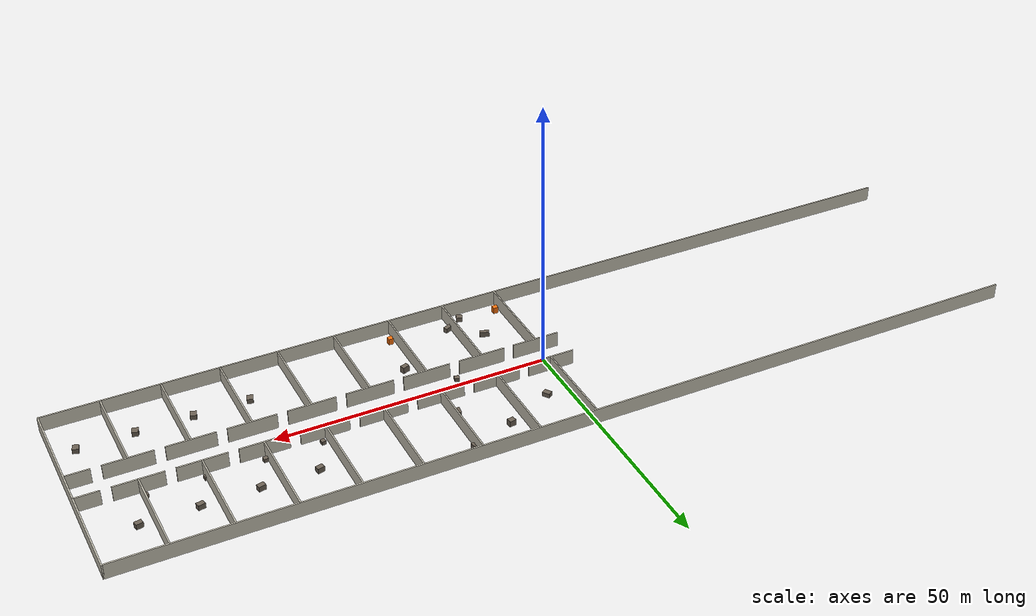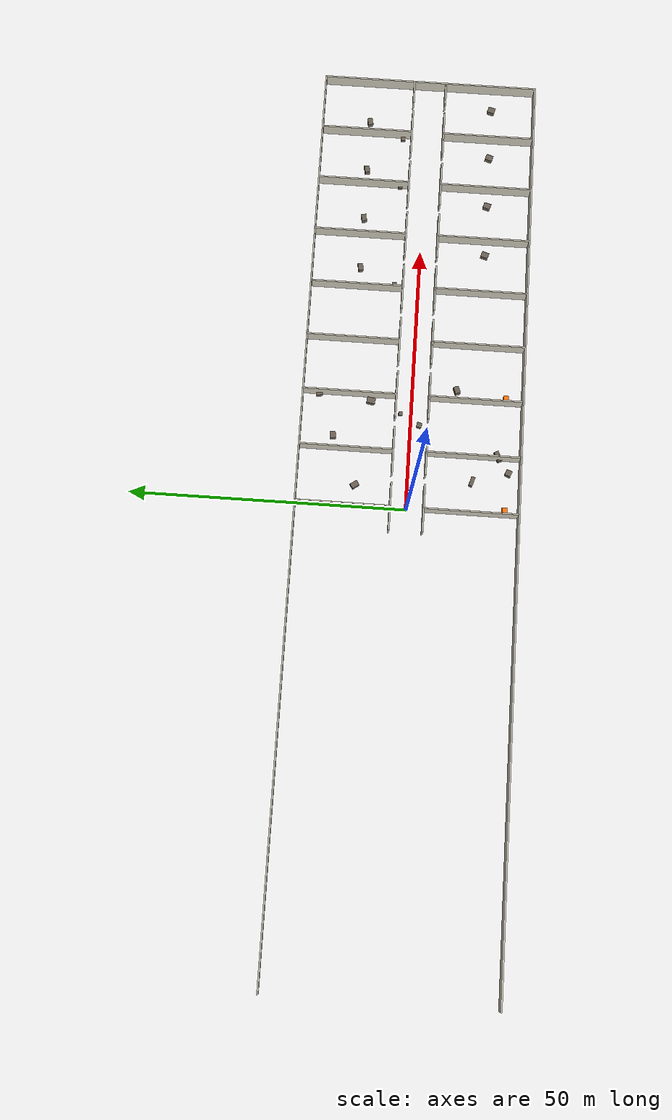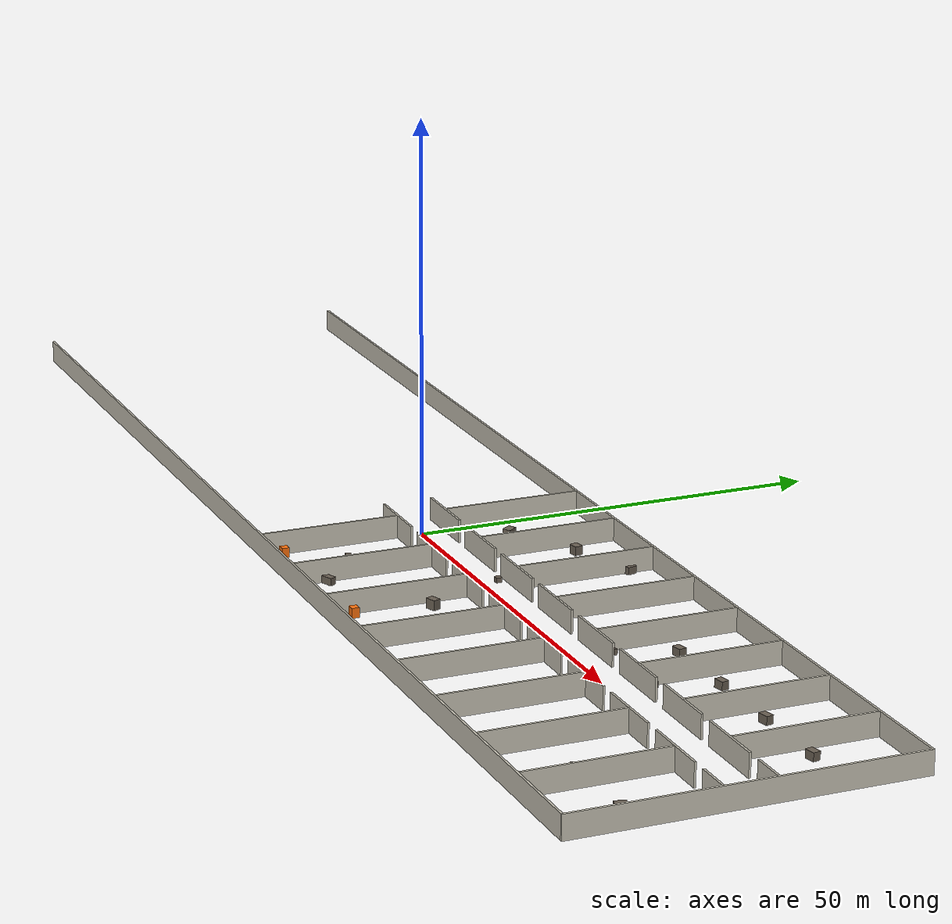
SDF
<sdf version="1.7">
 <world name="rescue_building_xxl">
  <model name="outer_wall_north">
   <static>true</static>
   <pose>0 20.0 1.4 0 0 0.0</pose>
   <link name="link">
    <collision name="col"><geometry><box><size>168.0 0.25 2.8</size></box></geometry></collision>
    <visual name="vis">
     <geometry><box><size>168.0 0.25 2.8</size></box></geometry>
     <material><ambient>0.8 0.78 0.72 1</ambient><diffuse>0.8 0.78 0.72 1</diffuse></material>
    </visual>
   </link>
  </model>
  <model name="outer_wall_south">
   <static>true</static>
   <pose>0 -20.0 1.4 0 0 0.0</pose>
   <link name="link">
    <collision name="col"><geometry><box><size>168.0 0.25 2.8</size></box></geometry></collision>
    <visual name="vis">
     <geometry><box><size>168.0 0.25 2.8</size></box></geometry>
     <material><ambient>0.8 0.78 0.72 1</ambient><diffuse>0.8 0.78 0.72 1</diffuse></material>
    </visual>
   </link>
  </model>
  <model name="outer_wall_east">
   <static>true</static>
   <pose>84.0 0 1.4 0 0 0.0</pose>
   <link name="link">
    <collision name="col"><geometry><box><size>0.25 40.25 2.8</size></box></geometry></collision>
    <visual name="vis">
     <geometry><box><size>0.25 40.25 2.8</size></box></geometry>
     <material><ambient>0.8 0.78 0.72 1</ambient><diffuse>0.8 0.78 0.72 1</diffuse></material>
    </visual>
   </link>
  </model>
  <model name="corridor_wall_north_16">
   <static>true</static>
   <pose>0.0 3.0 1.4 0 0 0.0</pose>
   <link name="link">
    <collision name="col"><geometry><box><size>8.7 0.25 2.8</size></box></geometry></collision>
    <visual name="vis">
     <geometry><box><size>8.7 0.25 2.8</size></box></geometry>
     <material><ambient>0.8 0.78 0.72 1</ambient><diffuse>0.8 0.78 0.72 1</diffuse></material>
    </visual>
   </link>
  </model>
  <model name="corridor_wall_north_18">
   <static>true</static>
   <pose>10.5 3.0 1.4 0 0 0.0</pose>
   <link name="link">
    <collision name="col"><geometry><box><size>8.7 0.25 2.8</size></box></geometry></collision>
    <visual name="vis">
     <geometry><box><size>8.7 0.25 2.8</size></box></geometry>
     <material><ambient>0.8 0.78 0.72 1</ambient><diffuse>0.8 0.78 0.72 1</diffuse></material>
    </visual>
   </link>
  </model>
  <model name="corridor_wall_north_20">
   <static>true</static>
   <pose>21.0 3.0 1.4 0 0 0.0</pose>
   <link name="link">
    <collision name="col"><geometry><box><size>8.700000000000003 0.25 2.8</size></box></geometry></collision>
    <visual name="vis">
     <geometry><box><size>8.700000000000003 0.25 2.8</size></box></geometry>
     <material><ambient>0.8 0.78 0.72 1</ambient><diffuse>0.8 0.78 0.72 1</diffuse></material>
    </visual>
   </link>
  </model>
  <model name="corridor_wall_north_22">
   <static>true</static>
   <pose>31.5 3.0 1.4 0 0 0.0</pose>
   <link name="link">
    <collision name="col"><geometry><box><size>8.700000000000003 0.25 2.8</size></box></geometry></collision>
    <visual name="vis">
     <geometry><box><size>8.700000000000003 0.25 2.8</size></box></geometry>
     <material><ambient>0.8 0.78 0.72 1</ambient><diffuse>0.8 0.78 0.72 1</diffuse></material>
    </visual>
   </link>
  </model>
  <model name="corridor_wall_north_24">
   <static>true</static>
   <pose>42.0 3.0 1.4 0 0 0.0</pose>
   <link name="link">
    <collision name="col"><geometry><box><size>8.700000000000003 0.25 2.8</size></box></geometry></collision>
    <visual name="vis">
     <geometry><box><size>8.700000000000003 0.25 2.8</size></box></geometry>
     <material><ambient>0.8 0.78 0.72 1</ambient><diffuse>0.8 0.78 0.72 1</diffuse></material>
    </visual>
   </link>
  </model>
  <model name="corridor_wall_north_26">
   <static>true</static>
   <pose>52.5 3.0 1.4 0 0 0.0</pose>
   <link name="link">
    <collision name="col"><geometry><box><size>8.700000000000003 0.25 2.8</size></box></geometry></collision>
    <visual name="vis">
     <geometry><box><size>8.700000000000003 0.25 2.8</size></box></geometry>
     <material><ambient>0.8 0.78 0.72 1</ambient><diffuse>0.8 0.78 0.72 1</diffuse></material>
    </visual>
   </link>
  </model>
  <model name="corridor_wall_north_28">
   <static>true</static>
   <pose>63.0 3.0 1.4 0 0 0.0</pose>
   <link name="link">
    <collision name="col"><geometry><box><size>8.699999999999996 0.25 2.8</size></box></geometry></collision>
    <visual name="vis">
     <geometry><box><size>8.699999999999996 0.25 2.8</size></box></geometry>
     <material><ambient>0.8 0.78 0.72 1</ambient><diffuse>0.8 0.78 0.72 1</diffuse></material>
    </visual>
   </link>
  </model>
  <model name="corridor_wall_north_30">
   <static>true</static>
   <pose>73.5 3.0 1.4 0 0 0.0</pose>
   <link name="link">
    <collision name="col"><geometry><box><size>8.699999999999989 0.25 2.8</size></box></geometry></collision>
    <visual name="vis">
     <geometry><box><size>8.699999999999989 0.25 2.8</size></box></geometry>
     <material><ambient>0.8 0.78 0.72 1</ambient><diffuse>0.8 0.78 0.72 1</diffuse></material>
    </visual>
   </link>
  </model>
  <model name="corridor_wall_north_32">
   <static>true</static>
   <pose>81.825 3.0 1.4 0 0 0.0</pose>
   <link name="link">
    <collision name="col"><geometry><box><size>4.349999999999994 0.25 2.8</size></box></geometry></collision>
    <visual name="vis">
     <geometry><box><size>4.349999999999994 0.25 2.8</size></box></geometry>
     <material><ambient>0.8 0.78 0.72 1</ambient><diffuse>0.8 0.78 0.72 1</diffuse></material>
    </visual>
   </link>
  </model>
  <model name="corridor_wall_south_16">
   <static>true</static>
   <pose>0.0 -3.0 1.4 0 0 0.0</pose>
   <link name="link">
    <collision name="col"><geometry><box><size>8.7 0.25 2.8</size></box></geometry></collision>
    <visual name="vis">
     <geometry><box><size>8.7 0.25 2.8</size></box></geometry>
     <material><ambient>0.8 0.78 0.72 1</ambient><diffuse>0.8 0.78 0.72 1</diffuse></material>
    </visual>
   </link>
  </model>
  <model name="corridor_wall_south_18">
   <static>true</static>
   <pose>10.5 -3.0 1.4 0 0 0.0</pose>
   <link name="link">
    <collision name="col"><geometry><box><size>8.7 0.25 2.8</size></box></geometry></collision>
    <visual name="vis">
     <geometry><box><size>8.7 0.25 2.8</size></box></geometry>
     <material><ambient>0.8 0.78 0.72 1</ambient><diffuse>0.8 0.78 0.72 1</diffuse></material>
    </visual>
   </link>
  </model>
  <model name="corridor_wall_south_20">
   <static>true</static>
   <pose>21.0 -3.0 1.4 0 0 0.0</pose>
   <link name="link">
    <collision name="col"><geometry><box><size>8.700000000000003 0.25 2.8</size></box></geometry></collision>
    <visual name="vis">
     <geometry><box><size>8.700000000000003 0.25 2.8</size></box></geometry>
     <material><ambient>0.8 0.78 0.72 1</ambient><diffuse>0.8 0.78 0.72 1</diffuse></material>
    </visual>
   </link>
  </model>
  <model name="corridor_wall_south_22">
   <static>true</static>
   <pose>31.5 -3.0 1.4 0 0 0.0</pose>
   <link name="link">
    <collision name="col"><geometry><box><size>8.700000000000003 0.25 2.8</size></box></geometry></collision>
    <visual name="vis">
     <geometry><box><size>8.700000000000003 0.25 2.8</size></box></geometry>
     <material><ambient>0.8 0.78 0.72 1</ambient><diffuse>0.8 0.78 0.72 1</diffuse></material>
    </visual>
   </link>
  </model>
  <model name="corridor_wall_south_24">
   <static>true</static>
   <pose>42.0 -3.0 1.4 0 0 0.0</pose>
   <link name="link">
    <collision name="col"><geometry><box><size>8.700000000000003 0.25 2.8</size></box></geometry></collision>
    <visual name="vis">
     <geometry><box><size>8.700000000000003 0.25 2.8</size></box></geometry>
     <material><ambient>0.8 0.78 0.72 1</ambient><diffuse>0.8 0.78 0.72 1</diffuse></material>
    </visual>
   </link>
  </model>
  <model name="corridor_wall_south_26">
   <static>true</static>
   <pose>52.5 -3.0 1.4 0 0 0.0</pose>
   <link name="link">
    <collision name="col"><geometry><box><size>8.700000000000003 0.25 2.8</size></box></geometry></collision>
    <visual name="vis">
     <geometry><box><size>8.700000000000003 0.25 2.8</size></box></geometry>
     <material><ambient>0.8 0.78 0.72 1</ambient><diffuse>0.8 0.78 0.72 1</diffuse></material>
    </visual>
   </link>
  </model>
  <model name="corridor_wall_south_28">
   <static>true</static>
   <pose>63.0 -3.0 1.4 0 0 0.0</pose>
   <link name="link">
    <collision name="col"><geometry><box><size>8.699999999999996 0.25 2.8</size></box></geometry></collision>
    <visual name="vis">
     <geometry><box><size>8.699999999999996 0.25 2.8</size></box></geometry>
     <material><ambient>0.8 0.78 0.72 1</ambient><diffuse>0.8 0.78 0.72 1</diffuse></material>
    </visual>
   </link>
  </model>
  <model name="corridor_wall_south_30">
   <static>true</static>
   <pose>73.5 -3.0 1.4 0 0 0.0</pose>
   <link name="link">
    <collision name="col"><geometry><box><size>8.699999999999989 0.25 2.8</size></box></geometry></collision>
    <visual name="vis">
     <geometry><box><size>8.699999999999989 0.25 2.8</size></box></geometry>
     <material><ambient>0.8 0.78 0.72 1</ambient><diffuse>0.8 0.78 0.72 1</diffuse></material>
    </visual>
   </link>
  </model>
  <model name="corridor_wall_south_32">
   <static>true</static>
   <pose>81.825 -3.0 1.4 0 0 0.0</pose>
   <link name="link">
    <collision name="col"><geometry><box><size>4.349999999999994 0.25 2.8</size></box></geometry></collision>
    <visual name="vis">
     <geometry><box><size>4.349999999999994 0.25 2.8</size></box></geometry>
     <material><ambient>0.8 0.78 0.72 1</ambient><diffuse>0.8 0.78 0.72 1</diffuse></material>
    </visual>
   </link>
  </model>
  <model name="divider_north_8">
   <static>true</static>
   <pose>0.0 11.5 1.4 0 0 0.0</pose>
   <link name="link">
    <collision name="col"><geometry><box><size>0.25 17.0 2.8</size></box></geometry></collision>
    <visual name="vis">
     <geometry><box><size>0.25 17.0 2.8</size></box></geometry>
     <material><ambient>0.8 0.78 0.72 1</ambient><diffuse>0.8 0.78 0.72 1</diffuse></material>
    </visual>
   </link>
  </model>
  <model name="divider_south_8">
   <static>true</static>
   <pose>0.0 -11.5 1.4 0 0 0.0</pose>
   <link name="link">
    <collision name="col"><geometry><box><size>0.25 17.0 2.8</size></box></geometry></collision>
    <visual name="vis">
     <geometry><box><size>0.25 17.0 2.8</size></box></geometry>
     <material><ambient>0.8 0.78 0.72 1</ambient><diffuse>0.8 0.78 0.72 1</diffuse></material>
    </visual>
   </link>
  </model>
  <model name="divider_north_9">
   <static>true</static>
   <pose>10.5 11.5 1.4 0 0 0.0</pose>
   <link name="link">
    <collision name="col"><geometry><box><size>0.25 17.0 2.8</size></box></geometry></collision>
    <visual name="vis">
     <geometry><box><size>0.25 17.0 2.8</size></box></geometry>
     <material><ambient>0.8 0.78 0.72 1</ambient><diffuse>0.8 0.78 0.72 1</diffuse></material>
    </visual>
   </link>
  </model>
  <model name="divider_south_9">
   <static>true</static>
   <pose>10.5 -11.5 1.4 0 0 0.0</pose>
   <link name="link">
    <collision name="col"><geometry><box><size>0.25 17.0 2.8</size></box></geometry></collision>
    <visual name="vis">
     <geometry><box><size>0.25 17.0 2.8</size></box></geometry>
     <material><ambient>0.8 0.78 0.72 1</ambient><diffuse>0.8 0.78 0.72 1</diffuse></material>
    </visual>
   </link>
  </model>
  <model name="divider_north_10">
   <static>true</static>
   <pose>21.0 11.5 1.4 0 0 0.0</pose>
   <link name="link">
    <collision name="col"><geometry><box><size>0.25 17.0 2.8</size></box></geometry></collision>
    <visual name="vis">
     <geometry><box><size>0.25 17.0 2.8</size></box></geometry>
     <material><ambient>0.8 0.78 0.72 1</ambient><diffuse>0.8 0.78 0.72 1</diffuse></material>
    </visual>
   </link>
  </model>
  <model name="divider_south_10">
   <static>true</static>
   <pose>21.0 -11.5 1.4 0 0 0.0</pose>
   <link name="link">
    <collision name="col"><geometry><box><size>0.25 17.0 2.8</size></box></geometry></collision>
    <visual name="vis">
     <geometry><box><size>0.25 17.0 2.8</size></box></geometry>
     <material><ambient>0.8 0.78 0.72 1</ambient><diffuse>0.8 0.78 0.72 1</diffuse></material>
    </visual>
   </link>
  </model>
  <model name="divider_north_11">
   <static>true</static>
   <pose>31.5 11.5 1.4 0 0 0.0</pose>
   <link name="link">
    <collision name="col"><geometry><box><size>0.25 17.0 2.8</size></box></geometry></collision>
    <visual name="vis">
     <geometry><box><size>0.25 17.0 2.8</size></box></geometry>
     <material><ambient>0.8 0.78 0.72 1</ambient><diffuse>0.8 0.78 0.72 1</diffuse></material>
    </visual>
   </link>
  </model>
  <model name="divider_south_11">
   <static>true</static>
   <pose>31.5 -11.5 1.4 0 0 0.0</pose>
   <link name="link">
    <collision name="col"><geometry><box><size>0.25 17.0 2.8</size></box></geometry></collision>
    <visual name="vis">
     <geometry><box><size>0.25 17.0 2.8</size></box></geometry>
     <material><ambient>0.8 0.78 0.72 1</ambient><diffuse>0.8 0.78 0.72 1</diffuse></material>
    </visual>
   </link>
  </model>
  <model name="divider_north_12">
   <static>true</static>
   <pose>42.0 11.5 1.4 0 0 0.0</pose>
   <link name="link">
    <collision name="col"><geometry><box><size>0.25 17.0 2.8</size></box></geometry></collision>
    <visual name="vis">
     <geometry><box><size>0.25 17.0 2.8</size></box></geometry>
     <material><ambient>0.8 0.78 0.72 1</ambient><diffuse>0.8 0.78 0.72 1</diffuse></material>
    </visual>
   </link>
  </model>
  <model name="divider_south_12">
   <static>true</static>
   <pose>42.0 -11.5 1.4 0 0 0.0</pose>
   <link name="link">
    <collision name="col"><geometry><box><size>0.25 17.0 2.8</size></box></geometry></collision>
    <visual name="vis">
     <geometry><box><size>0.25 17.0 2.8</size></box></geometry>
     <material><ambient>0.8 0.78 0.72 1</ambient><diffuse>0.8 0.78 0.72 1</diffuse></material>
    </visual>
   </link>
  </model>
  <model name="divider_north_13">
   <static>true</static>
   <pose>52.5 11.5 1.4 0 0 0.0</pose>
   <link name="link">
    <collision name="col"><geometry><box><size>0.25 17.0 2.8</size></box></geometry></collision>
    <visual name="vis">
     <geometry><box><size>0.25 17.0 2.8</size></box></geometry>
     <material><ambient>0.8 0.78 0.72 1</ambient><diffuse>0.8 0.78 0.72 1</diffuse></material>
    </visual>
   </link>
  </model>
  <model name="divider_south_13">
   <static>true</static>
   <pose>52.5 -11.5 1.4 0 0 0.0</pose>
   <link name="link">
    <collision name="col"><geometry><box><size>0.25 17.0 2.8</size></box></geometry></collision>
    <visual name="vis">
     <geometry><box><size>0.25 17.0 2.8</size></box></geometry>
     <material><ambient>0.8 0.78 0.72 1</ambient><diffuse>0.8 0.78 0.72 1</diffuse></material>
    </visual>
   </link>
  </model>
  <model name="divider_north_14">
   <static>true</static>
   <pose>63.0 11.5 1.4 0 0 0.0</pose>
   <link name="link">
    <collision name="col"><geometry><box><size>0.25 17.0 2.8</size></box></geometry></collision>
    <visual name="vis">
     <geometry><box><size>0.25 17.0 2.8</size></box></geometry>
     <material><ambient>0.8 0.78 0.72 1</ambient><diffuse>0.8 0.78 0.72 1</diffuse></material>
    </visual>
   </link>
  </model>
  <model name="divider_south_14">
   <static>true</static>
   <pose>63.0 -11.5 1.4 0 0 0.0</pose>
   <link name="link">
    <collision name="col"><geometry><box><size>0.25 17.0 2.8</size></box></geometry></collision>
    <visual name="vis">
     <geometry><box><size>0.25 17.0 2.8</size></box></geometry>
     <material><ambient>0.8 0.78 0.72 1</ambient><diffuse>0.8 0.78 0.72 1</diffuse></material>
    </visual>
   </link>
  </model>
  <model name="divider_north_15">
   <static>true</static>
   <pose>73.5 11.5 1.4 0 0 0.0</pose>
   <link name="link">
    <collision name="col"><geometry><box><size>0.25 17.0 2.8</size></box></geometry></collision>
    <visual name="vis">
     <geometry><box><size>0.25 17.0 2.8</size></box></geometry>
     <material><ambient>0.8 0.78 0.72 1</ambient><diffuse>0.8 0.78 0.72 1</diffuse></material>
    </visual>
   </link>
  </model>
  <model name="divider_south_15">
   <static>true</static>
   <pose>73.5 -11.5 1.4 0 0 0.0</pose>
   <link name="link">
    <collision name="col"><geometry><box><size>0.25 17.0 2.8</size></box></geometry></collision>
    <visual name="vis">
     <geometry><box><size>0.25 17.0 2.8</size></box></geometry>
     <material><ambient>0.8 0.78 0.72 1</ambient><diffuse>0.8 0.78 0.72 1</diffuse></material>
    </visual>
   </link>
  </model>
  <model name="debris_7">
   <static>true</static>
   <pose>4 9.5 0.4 0 0 0.6</pose>
   <link name="link">
    <collision name="col"><geometry><box><size>1.0 1.4 0.8</size></box></geometry></collision>
    <visual name="vis">
     <geometry><box><size>1.0 1.4 0.8</size></box></geometry>
     <material><ambient>0.42 0.38 0.33 1</ambient><diffuse>0.42 0.38 0.33 1</diffuse></material>
    </visual>
   </link>
  </model>
  <model name="debris_8">
   <static>true</static>
   <pose>6 -11.5 0.5 0 0 -0.3</pose>
   <link name="link">
    <collision name="col"><geometry><box><size>1.7 0.7 1.0</size></box></geometry></collision>
    <visual name="vis">
     <geometry><box><size>1.7 0.7 1.0</size></box></geometry>
     <material><ambient>0.42 0.38 0.33 1</ambient><diffuse>0.42 0.38 0.33 1</diffuse></material>
    </visual>
   </link>
  </model>
  <model name="debris_9">
   <static>true</static>
   <pose>13 14 0.55 0 0 0.15</pose>
   <link name="link">
    <collision name="col"><geometry><box><size>1.2 1.0 1.1</size></box></geometry></collision>
    <visual name="vis">
     <geometry><box><size>1.2 1.0 1.1</size></box></geometry>
     <material><ambient>0.42 0.38 0.33 1</ambient><diffuse>0.42 0.38 0.33 1</diffuse></material>
    </visual>
   </link>
  </model>
  <model name="debris_10">
   <static>true</static>
   <pose>11 -16 0.45 0 0 0.4</pose>
   <link name="link">
    <collision name="col"><geometry><box><size>1.9 0.8 0.9</size></box></geometry></collision>
    <visual name="vis">
     <geometry><box><size>1.9 0.8 0.9</size></box></geometry>
     <material><ambient>0.42 0.38 0.33 1</ambient><diffuse>0.42 0.38 0.33 1</diffuse></material>
    </visual>
   </link>
  </model>
  <model name="debris_11">
   <static>true</static>
   <pose>20 7.5 0.5 0 0 -0.15</pose>
   <link name="link">
    <collision name="col"><geometry><box><size>1.1 1.5 1.0</size></box></geometry></collision>
    <visual name="vis">
     <geometry><box><size>1.1 1.5 1.0</size></box></geometry>
     <material><ambient>0.42 0.38 0.33 1</ambient><diffuse>0.42 0.38 0.33 1</diffuse></material>
    </visual>
   </link>
  </model>
  <model name="debris_12">
   <static>true</static>
   <pose>23 -8 0.6 0 0 0.35</pose>
   <link name="link">
    <collision name="col"><geometry><box><size>1.3 0.9 1.2</size></box></geometry></collision>
    <visual name="vis">
     <geometry><box><size>1.3 0.9 1.2</size></box></geometry>
     <material><ambient>0.42 0.38 0.33 1</ambient><diffuse>0.42 0.38 0.33 1</diffuse></material>
    </visual>
   </link>
  </model>
  <model name="debris_15">
   <static>true</static>
   <pose>16 -1.5 0.35 0 0 -0.25</pose>
   <link name="link">
    <collision name="col"><geometry><box><size>0.9 0.9 0.7</size></box></geometry></collision>
    <visual name="vis">
     <geometry><box><size>0.9 0.9 0.7</size></box></geometry>
     <material><ambient>0.42 0.38 0.33 1</ambient><diffuse>0.42 0.38 0.33 1</diffuse></material>
    </visual>
   </link>
  </model>
  <model name="debris_17">
   <static>true</static>
   <pose>8 -18 0.45 0 0 -0.35</pose>
   <link name="link">
    <collision name="col"><geometry><box><size>1.1 1.1 0.9</size></box></geometry></collision>
    <visual name="vis">
     <geometry><box><size>1.1 1.1 0.9</size></box></geometry>
     <material><ambient>0.42 0.38 0.33 1</ambient><diffuse>0.42 0.38 0.33 1</diffuse></material>
    </visual>
   </link>
  </model>
  <model name="debris_18">
   <static>true</static>
   <pose>18 2.0 0.3 0 0 0.0</pose>
   <link name="link">
    <collision name="col"><geometry><box><size>0.7 0.7 0.6</size></box></geometry></collision>
    <visual name="vis">
     <geometry><box><size>0.7 0.7 0.6</size></box></geometry>
     <material><ambient>0.42 0.38 0.33 1</ambient><diffuse>0.42 0.38 0.33 1</diffuse></material>
    </visual>
   </link>
  </model>
  <model name="debris_20">
   <static>true</static>
   <pose>21 17 0.45 0 0 0.2</pose>
   <link name="link">
    <collision name="col"><geometry><box><size>1.2 1.2 0.9</size></box></geometry></collision>
    <visual name="vis">
     <geometry><box><size>1.2 1.2 0.9</size></box></geometry>
     <material><ambient>0.42 0.38 0.33 1</ambient><diffuse>0.42 0.38 0.33 1</diffuse></material>
    </visual>
   </link>
  </model>
  <model name="debris_33">
   <static>true</static>
   <pose>46 11 0.5 0 0 0.2</pose>
   <link name="link">
    <collision name="col"><geometry><box><size>1.3 0.9 1.0</size></box></geometry></collision>
    <visual name="vis">
     <geometry><box><size>1.3 0.9 1.0</size></box></geometry>
     <material><ambient>0.42 0.38 0.33 1</ambient><diffuse>0.42 0.38 0.33 1</diffuse></material>
    </visual>
   </link>
  </model>
  <model name="debris_34">
   <static>true</static>
   <pose>50 -12 0.45 0 0 -0.3</pose>
   <link name="link">
    <collision name="col"><geometry><box><size>1.1 1.3 0.9</size></box></geometry></collision>
    <visual name="vis">
     <geometry><box><size>1.1 1.3 0.9</size></box></geometry>
     <material><ambient>0.42 0.38 0.33 1</ambient><diffuse>0.42 0.38 0.33 1</diffuse></material>
    </visual>
   </link>
  </model>
  <model name="debris_35">
   <static>true</static>
   <pose>43 4.5 0.35 0 0 0.1</pose>
   <link name="link">
    <collision name="col"><geometry><box><size>0.8 0.8 0.7</size></box></geometry></collision>
    <visual name="vis">
     <geometry><box><size>0.8 0.8 0.7</size></box></geometry>
     <material><ambient>0.42 0.38 0.33 1</ambient><diffuse>0.42 0.38 0.33 1</diffuse></material>
    </visual>
   </link>
  </model>
  <model name="debris_36">
   <static>true</static>
   <pose>56 11 0.5 0 0 0.2</pose>
   <link name="link">
    <collision name="col"><geometry><box><size>1.3 0.9 1.0</size></box></geometry></collision>
    <visual name="vis">
     <geometry><box><size>1.3 0.9 1.0</size></box></geometry>
     <material><ambient>0.42 0.38 0.33 1</ambient><diffuse>0.42 0.38 0.33 1</diffuse></material>
    </visual>
   </link>
  </model>
  <model name="debris_37">
   <static>true</static>
   <pose>60 -12 0.45 0 0 -0.3</pose>
   <link name="link">
    <collision name="col"><geometry><box><size>1.1 1.3 0.9</size></box></geometry></collision>
    <visual name="vis">
     <geometry><box><size>1.1 1.3 0.9</size></box></geometry>
     <material><ambient>0.42 0.38 0.33 1</ambient><diffuse>0.42 0.38 0.33 1</diffuse></material>
    </visual>
   </link>
  </model>
  <model name="debris_38">
   <static>true</static>
   <pose>53 4.5 0.35 0 0 0.1</pose>
   <link name="link">
    <collision name="col"><geometry><box><size>0.8 0.8 0.7</size></box></geometry></collision>
    <visual name="vis">
     <geometry><box><size>0.8 0.8 0.7</size></box></geometry>
     <material><ambient>0.42 0.38 0.33 1</ambient><diffuse>0.42 0.38 0.33 1</diffuse></material>
    </visual>
   </link>
  </model>
  <model name="debris_39">
   <static>true</static>
   <pose>66 11 0.5 0 0 0.2</pose>
   <link name="link">
    <collision name="col"><geometry><box><size>1.3 0.9 1.0</size></box></geometry></collision>
    <visual name="vis">
     <geometry><box><size>1.3 0.9 1.0</size></box></geometry>
     <material><ambient>0.42 0.38 0.33 1</ambient><diffuse>0.42 0.38 0.33 1</diffuse></material>
    </visual>
   </link>
  </model>
  <model name="debris_40">
   <static>true</static>
   <pose>70 -12 0.45 0 0 -0.3</pose>
   <link name="link">
    <collision name="col"><geometry><box><size>1.1 1.3 0.9</size></box></geometry></collision>
    <visual name="vis">
     <geometry><box><size>1.1 1.3 0.9</size></box></geometry>
     <material><ambient>0.42 0.38 0.33 1</ambient><diffuse>0.42 0.38 0.33 1</diffuse></material>
    </visual>
   </link>
  </model>
  <model name="debris_41">
   <static>true</static>
   <pose>63 4.5 0.35 0 0 0.1</pose>
   <link name="link">
    <collision name="col"><geometry><box><size>0.8 0.8 0.7</size></box></geometry></collision>
    <visual name="vis">
     <geometry><box><size>0.8 0.8 0.7</size></box></geometry>
     <material><ambient>0.42 0.38 0.33 1</ambient><diffuse>0.42 0.38 0.33 1</diffuse></material>
    </visual>
   </link>
  </model>
  <model name="debris_42">
   <static>true</static>
   <pose>76 11 0.5 0 0 0.2</pose>
   <link name="link">
    <collision name="col"><geometry><box><size>1.3 0.9 1.0</size></box></geometry></collision>
    <visual name="vis">
     <geometry><box><size>1.3 0.9 1.0</size></box></geometry>
     <material><ambient>0.42 0.38 0.33 1</ambient><diffuse>0.42 0.38 0.33 1</diffuse></material>
    </visual>
   </link>
  </model>
  <model name="debris_43">
   <static>true</static>
   <pose>80 -12 0.45 0 0 -0.3</pose>
   <link name="link">
    <collision name="col"><geometry><box><size>1.1 1.3 0.9</size></box></geometry></collision>
    <visual name="vis">
     <geometry><box><size>1.1 1.3 0.9</size></box></geometry>
     <material><ambient>0.42 0.38 0.33 1</ambient><diffuse>0.42 0.38 0.33 1</diffuse></material>
    </visual>
   </link>
  </model>
  <model name="debris_44">
   <static>true</static>
   <pose>73 4.5 0.35 0 0 0.1</pose>
   <link name="link">
    <collision name="col"><geometry><box><size>0.8 0.8 0.7</size></box></geometry></collision>
    <visual name="vis">
     <geometry><box><size>0.8 0.8 0.7</size></box></geometry>
     <material><ambient>0.42 0.38 0.33 1</ambient><diffuse>0.42 0.38 0.33 1</diffuse></material>
    </visual>
   </link>
  </model>
  <model name="fire_source_2">
   <static>true</static>
   <pose>22.0 -17.0 0.6 0 0 0</pose>
   <link name="link">
    <visual name="vis">
     <geometry><box><size>0.9 0.9 1.2</size></box></geometry>
     <material>
      <ambient>1.0 0.45 0.05 1</ambient>
      <diffuse>1.0 0.45 0.05 1</diffuse>
      <emissive>1.0 0.5 0.1 1</emissive>
     </material>
     <plugin filename="gz-sim-thermal-system" name="gz::sim::systems::Thermal">
      <temperature>600.0</temperature>
     </plugin>
    </visual>
   </link>
  </model>
  <model name="fire_source_3">
   <static>true</static>
   <pose>1.0 -17.5 0.6 0 0 0</pose>
   <link name="link">
    <visual name="vis">
     <geometry><box><size>0.9 0.9 1.2</size></box></geometry>
     <material>
      <ambient>1.0 0.45 0.05 1</ambient>
      <diffuse>1.0 0.45 0.05 1</diffuse>
      <emissive>1.0 0.5 0.1 1</emissive>
     </material>
     <plugin filename="gz-sim-thermal-system" name="gz::sim::systems::Thermal">
      <temperature>600.0</temperature>
     </plugin>
    </visual>
   </link>
  </model>
 </world>
</sdf>
